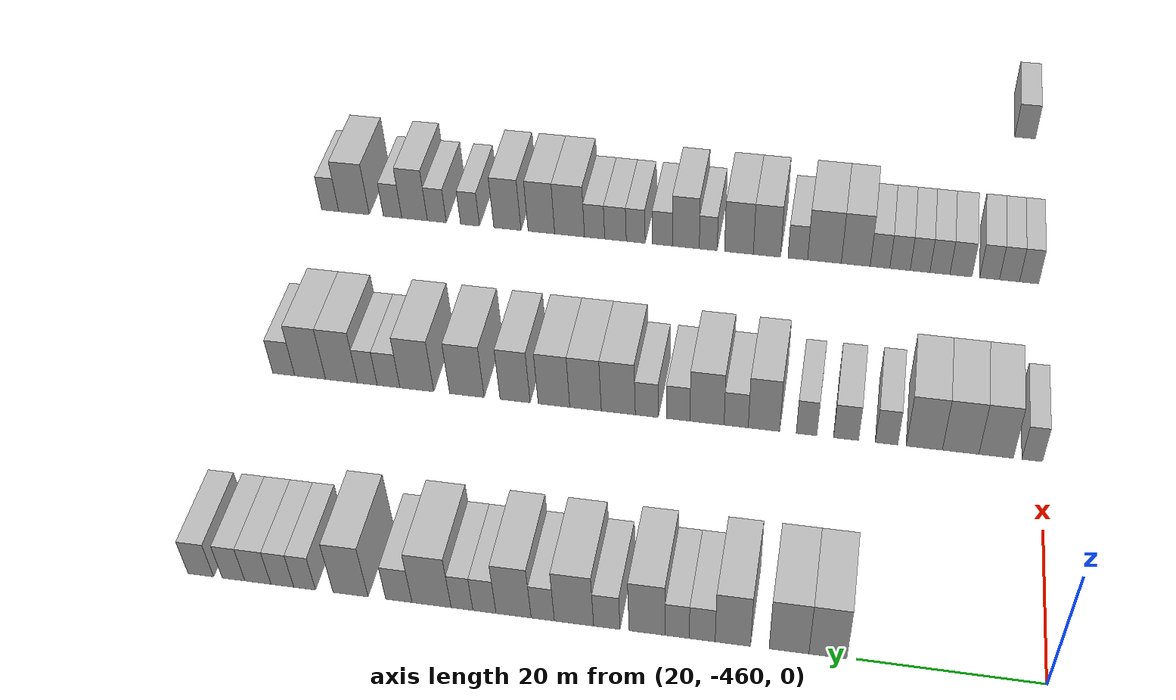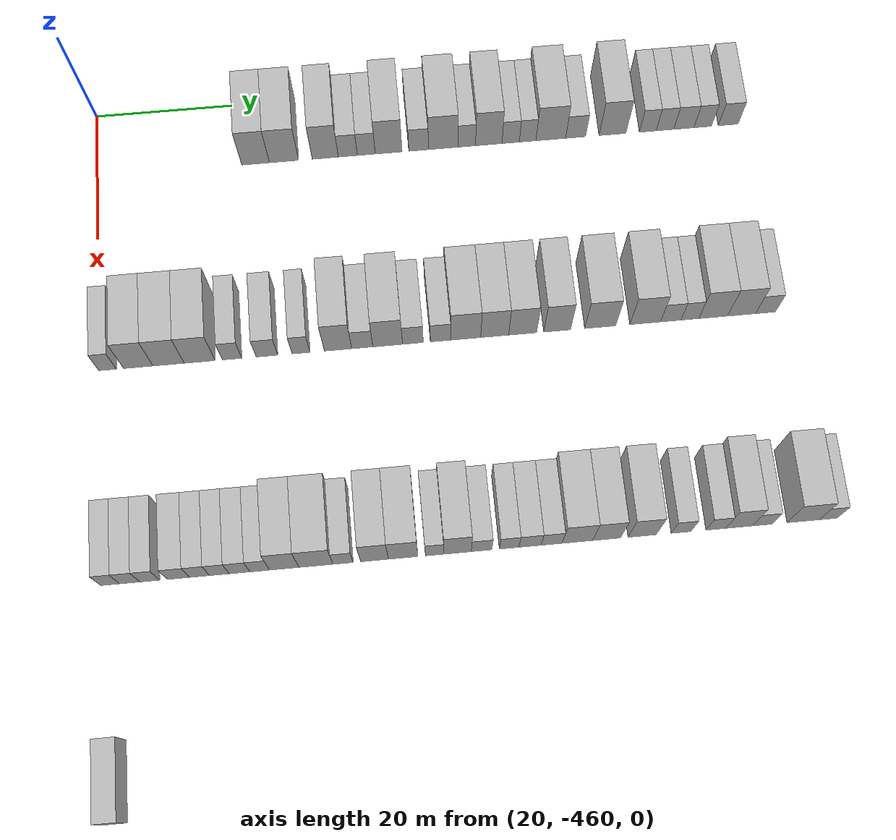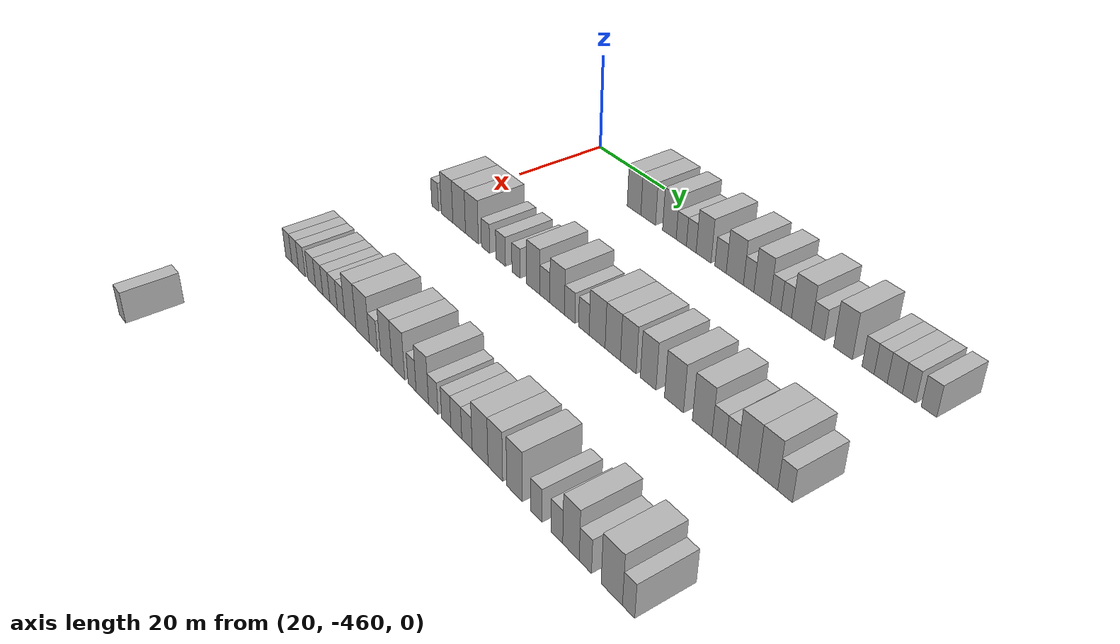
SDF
<sdf version="1.6">
 <world name="default">
  <model name="building_1">
   <static>1</static>
   <pose>25.0000 -436.9459 0 0.000000 0.000000 0.000000</pose>
   <link name="link">
    <pose>0 0 4.50 0 0 0</pose>
    <collision name="collision"><geometry><box><size>10.0000 4.0361 9.0000</size></box></geometry></collision>
    <visual name="visual">
     <cast_shadows>0</cast_shadows>
     <geometry><box><size>10.0000 4.0361 9.0000</size></box></geometry>
     <material>
      <script>
       <uri>model://HANNAS_wall/materials/scripts</uri>
       <uri>model://HANNAS_wall/materials/textures</uri>
       <name>vrc/HANNAS_wall</name>
      </script>
     </material>
    </visual>
   </link>
  </model>
  <model name="building_2">
   <static>1</static>
   <pose>25.0000 -432.8017 0 0.000000 0.000000 0.000000</pose>
   <link name="link">
    <pose>0 0 4.50 0 0 0</pose>
    <collision name="collision"><geometry><box><size>10.0000 4.2522 9.0000</size></box></geometry></collision>
    <visual name="visual">
     <cast_shadows>0</cast_shadows>
     <geometry><box><size>10.0000 4.2522 9.0000</size></box></geometry>
     <material>
      <script>
       <uri>model://HANNAS_wall/materials/scripts</uri>
       <uri>model://HANNAS_wall/materials/textures</uri>
       <name>vrc/HANNAS_wall</name>
      </script>
     </material>
    </visual>
   </link>
  </model>
  <model name="building_3">
   <static>1</static>
   <pose>25.0000 -426.7690 0 0.000000 0.000000 0.000000</pose>
   <link name="link">
    <pose>0 0 4.50 0 0 0</pose>
    <collision name="collision"><geometry><box><size>10.0000 3.8133 9.0000</size></box></geometry></collision>
    <visual name="visual">
     <cast_shadows>0</cast_shadows>
     <geometry><box><size>10.0000 3.8133 9.0000</size></box></geometry>
     <material>
      <script>
       <uri>model://HANNAS_wall/materials/scripts</uri>
       <uri>model://HANNAS_wall/materials/textures</uri>
       <name>vrc/HANNAS_wall</name>
      </script>
     </material>
    </visual>
   </link>
  </model>
  <model name="building_4">
   <static>1</static>
   <pose>25.0000 -423.4668 0 0.000000 0.000000 0.000000</pose>
   <link name="link">
    <pose>0 0 3.00 0 0 0</pose>
    <collision name="collision"><geometry><box><size>10.0000 2.7911 6.0000</size></box></geometry></collision>
    <visual name="visual">
     <cast_shadows>0</cast_shadows>
     <geometry><box><size>10.0000 2.7911 6.0000</size></box></geometry>
     <material>
      <script>
       <uri>model://HANNAS_wall/materials/scripts</uri>
       <uri>model://HANNAS_wall/materials/textures</uri>
       <name>vrc/HANNAS_wall</name>
      </script>
     </material>
    </visual>
   </link>
  </model>
  <model name="building_5">
   <static>1</static>
   <pose>25.0000 -420.7635 0 0.000000 0.000000 0.000000</pose>
   <link name="link">
    <pose>0 0 3.00 0 0 0</pose>
    <collision name="collision"><geometry><box><size>10.0000 2.6154 6.0000</size></box></geometry></collision>
    <visual name="visual">
     <cast_shadows>0</cast_shadows>
     <geometry><box><size>10.0000 2.6154 6.0000</size></box></geometry>
     <material>
      <script>
       <uri>model://HANNAS_wall/materials/scripts</uri>
       <uri>model://HANNAS_wall/materials/textures</uri>
       <name>vrc/HANNAS_wall</name>
      </script>
     </material>
    </visual>
   </link>
  </model>
  <model name="building_6">
   <static>1</static>
   <pose>25.0000 -417.4886 0 0.000000 0.000000 0.000000</pose>
   <link name="link">
    <pose>0 0 4.50 0 0 0</pose>
    <collision name="collision"><geometry><box><size>10.0000 3.9344 9.0000</size></box></geometry></collision>
    <visual name="visual">
     <cast_shadows>0</cast_shadows>
     <geometry><box><size>10.0000 3.9344 9.0000</size></box></geometry>
     <material>
      <script>
       <uri>model://HANNAS_wall/materials/scripts</uri>
       <uri>model://HANNAS_wall/materials/textures</uri>
       <name>vrc/HANNAS_wall</name>
      </script>
     </material>
    </visual>
   </link>
  </model>
  <model name="building_7">
   <static>1</static>
   <pose>25.0000 -413.0755 0 0.000000 0.000000 0.000000</pose>
   <link name="link">
    <pose>0 0 3.00 0 0 0</pose>
    <collision name="collision"><geometry><box><size>10.0000 2.8920 6.0000</size></box></geometry></collision>
    <visual name="visual">
     <cast_shadows>0</cast_shadows>
     <geometry><box><size>10.0000 2.8920 6.0000</size></box></geometry>
     <material>
      <script>
       <uri>model://HANNAS_wall/materials/scripts</uri>
       <uri>model://HANNAS_wall/materials/textures</uri>
       <name>vrc/HANNAS_wall</name>
      </script>
     </material>
    </visual>
   </link>
  </model>
  <model name="building_8">
   <static>1</static>
   <pose>25.0000 -409.4676 0 0.000000 0.000000 0.000000</pose>
   <link name="link">
    <pose>0 0 4.50 0 0 0</pose>
    <collision name="collision"><geometry><box><size>10.0000 4.3238 9.0000</size></box></geometry></collision>
    <visual name="visual">
     <cast_shadows>0</cast_shadows>
     <geometry><box><size>10.0000 4.3238 9.0000</size></box></geometry>
     <material>
      <script>
       <uri>model://HANNAS_wall/materials/scripts</uri>
       <uri>model://HANNAS_wall/materials/textures</uri>
       <name>vrc/HANNAS_wall</name>
      </script>
     </material>
    </visual>
   </link>
  </model>
  <model name="building_9">
   <static>1</static>
   <pose>25.0000 -406.0213 0 0.000000 0.000000 0.000000</pose>
   <link name="link">
    <pose>0 0 3.00 0 0 0</pose>
    <collision name="collision"><geometry><box><size>10.0000 2.5686 6.0000</size></box></geometry></collision>
    <visual name="visual">
     <cast_shadows>0</cast_shadows>
     <geometry><box><size>10.0000 2.5686 6.0000</size></box></geometry>
     <material>
      <script>
       <uri>model://HANNAS_wall/materials/scripts</uri>
       <uri>model://HANNAS_wall/materials/textures</uri>
       <name>vrc/HANNAS_wall</name>
      </script>
     </material>
    </visual>
   </link>
  </model>
  <model name="building_10">
   <static>1</static>
   <pose>25.0000 -402.7828 0 0.000000 0.000000 0.000000</pose>
   <link name="link">
    <pose>0 0 4.50 0 0 0</pose>
    <collision name="collision"><geometry><box><size>10.0000 3.9084 9.0000</size></box></geometry></collision>
    <visual name="visual">
     <cast_shadows>0</cast_shadows>
     <geometry><box><size>10.0000 3.9084 9.0000</size></box></geometry>
     <material>
      <script>
       <uri>model://HANNAS_wall/materials/scripts</uri>
       <uri>model://HANNAS_wall/materials/textures</uri>
       <name>vrc/HANNAS_wall</name>
      </script>
     </material>
    </visual>
   </link>
  </model>
  <model name="building_11">
   <static>1</static>
   <pose>25.0000 -399.5430 0 0.000000 0.000000 0.000000</pose>
   <link name="link">
    <pose>0 0 3.00 0 0 0</pose>
    <collision name="collision"><geometry><box><size>10.0000 2.5712 6.0000</size></box></geometry></collision>
    <visual name="visual">
     <cast_shadows>0</cast_shadows>
     <geometry><box><size>10.0000 2.5712 6.0000</size></box></geometry>
     <material>
      <script>
       <uri>model://HANNAS_wall/materials/scripts</uri>
       <uri>model://HANNAS_wall/materials/textures</uri>
       <name>vrc/HANNAS_wall</name>
      </script>
     </material>
    </visual>
   </link>
  </model>
  <model name="building_12">
   <static>1</static>
   <pose>25.0000 -397.0383 0 0.000000 0.000000 0.000000</pose>
   <link name="link">
    <pose>0 0 3.00 0 0 0</pose>
    <collision name="collision"><geometry><box><size>10.0000 2.4381 6.0000</size></box></geometry></collision>
    <visual name="visual">
     <cast_shadows>0</cast_shadows>
     <geometry><box><size>10.0000 2.4381 6.0000</size></box></geometry>
     <material>
      <script>
       <uri>model://HANNAS_wall/materials/scripts</uri>
       <uri>model://HANNAS_wall/materials/textures</uri>
       <name>vrc/HANNAS_wall</name>
      </script>
     </material>
    </visual>
   </link>
  </model>
  <model name="building_13">
   <static>1</static>
   <pose>25.0000 -393.6206 0 0.000000 0.000000 0.000000</pose>
   <link name="link">
    <pose>0 0 4.50 0 0 0</pose>
    <collision name="collision"><geometry><box><size>10.0000 4.3973 9.0000</size></box></geometry></collision>
    <visual name="visual">
     <cast_shadows>0</cast_shadows>
     <geometry><box><size>10.0000 4.3973 9.0000</size></box></geometry>
     <material>
      <script>
       <uri>model://HANNAS_wall/materials/scripts</uri>
       <uri>model://HANNAS_wall/materials/textures</uri>
       <name>vrc/HANNAS_wall</name>
      </script>
     </material>
    </visual>
   </link>
  </model>
  <model name="building_14">
   <static>1</static>
   <pose>25.0000 -389.9452 0 0.000000 0.000000 0.000000</pose>
   <link name="link">
    <pose>0 0 3.00 0 0 0</pose>
    <collision name="collision"><geometry><box><size>10.0000 2.9535 6.0000</size></box></geometry></collision>
    <visual name="visual">
     <cast_shadows>0</cast_shadows>
     <geometry><box><size>10.0000 2.9535 6.0000</size></box></geometry>
     <material>
      <script>
       <uri>model://HANNAS_wall/materials/scripts</uri>
       <uri>model://HANNAS_wall/materials/textures</uri>
       <name>vrc/HANNAS_wall</name>
      </script>
     </material>
    </visual>
   </link>
  </model>
  <model name="building_15">
   <static>1</static>
   <pose>25.0000 -384.4778 0 0.000000 0.000000 0.000000</pose>
   <link name="link">
    <pose>0 0 4.50 0 0 0</pose>
    <collision name="collision"><geometry><box><size>10.0000 3.9812 9.0000</size></box></geometry></collision>
    <visual name="visual">
     <cast_shadows>0</cast_shadows>
     <geometry><box><size>10.0000 3.9812 9.0000</size></box></geometry>
     <material>
      <script>
       <uri>model://HANNAS_wall/materials/scripts</uri>
       <uri>model://HANNAS_wall/materials/textures</uri>
       <name>vrc/HANNAS_wall</name>
      </script>
     </material>
    </visual>
   </link>
  </model>
  <model name="building_16">
   <static>1</static>
   <pose>25.0000 -379.2430 0 0.000000 0.000000 0.000000</pose>
   <link name="link">
    <pose>0 0 3.00 0 0 0</pose>
    <collision name="collision"><geometry><box><size>10.0000 2.4883 6.0000</size></box></geometry></collision>
    <visual name="visual">
     <cast_shadows>0</cast_shadows>
     <geometry><box><size>10.0000 2.4883 6.0000</size></box></geometry>
     <material>
      <script>
       <uri>model://HANNAS_wall/materials/scripts</uri>
       <uri>model://HANNAS_wall/materials/textures</uri>
       <name>vrc/HANNAS_wall</name>
      </script>
     </material>
    </visual>
   </link>
  </model>
  <model name="building_17">
   <static>1</static>
   <pose>25.0000 -376.6878 0 0.000000 0.000000 0.000000</pose>
   <link name="link">
    <pose>0 0 3.00 0 0 0</pose>
    <collision name="collision"><geometry><box><size>10.0000 2.6222 6.0000</size></box></geometry></collision>
    <visual name="visual">
     <cast_shadows>0</cast_shadows>
     <geometry><box><size>10.0000 2.6222 6.0000</size></box></geometry>
     <material>
      <script>
       <uri>model://HANNAS_wall/materials/scripts</uri>
       <uri>model://HANNAS_wall/materials/textures</uri>
       <name>vrc/HANNAS_wall</name>
      </script>
     </material>
    </visual>
   </link>
  </model>
  <model name="building_18">
   <static>1</static>
   <pose>25.0000 -373.8791 0 0.000000 0.000000 0.000000</pose>
   <link name="link">
    <pose>0 0 3.00 0 0 0</pose>
    <collision name="collision"><geometry><box><size>10.0000 2.9952 6.0000</size></box></geometry></collision>
    <visual name="visual">
     <cast_shadows>0</cast_shadows>
     <geometry><box><size>10.0000 2.9952 6.0000</size></box></geometry>
     <material>
      <script>
       <uri>model://HANNAS_wall/materials/scripts</uri>
       <uri>model://HANNAS_wall/materials/textures</uri>
       <name>vrc/HANNAS_wall</name>
      </script>
     </material>
    </visual>
   </link>
  </model>
  <model name="building_19">
   <static>1</static>
   <pose>25.0000 -371.0766 0 0.000000 0.000000 0.000000</pose>
   <link name="link">
    <pose>0 0 3.00 0 0 0</pose>
    <collision name="collision"><geometry><box><size>10.0000 2.6098 6.0000</size></box></geometry></collision>
    <visual name="visual">
     <cast_shadows>0</cast_shadows>
     <geometry><box><size>10.0000 2.6098 6.0000</size></box></geometry>
     <material>
      <script>
       <uri>model://HANNAS_wall/materials/scripts</uri>
       <uri>model://HANNAS_wall/materials/textures</uri>
       <name>vrc/HANNAS_wall</name>
      </script>
     </material>
    </visual>
   </link>
  </model>
  <model name="building_20">
   <static>1</static>
   <pose>25.0000 -367.2946 0 0.000000 0.000000 0.000000</pose>
   <link name="link">
    <pose>0 0 3.00 0 0 0</pose>
    <collision name="collision"><geometry><box><size>10.0000 2.9542 6.0000</size></box></geometry></collision>
    <visual name="visual">
     <cast_shadows>0</cast_shadows>
     <geometry><box><size>10.0000 2.9542 6.0000</size></box></geometry>
     <material>
      <script>
       <uri>model://HANNAS_wall/materials/scripts</uri>
       <uri>model://HANNAS_wall/materials/textures</uri>
       <name>vrc/HANNAS_wall</name>
      </script>
     </material>
    </visual>
   </link>
  </model>
  <model name="building_235">
   <static>1</static>
   <pose>55.0000 -458.7933 0 0.000000 0.000000 0.000000</pose>
   <link name="link">
    <pose>0 0 3.00 0 0 0</pose>
    <collision name="collision"><geometry><box><size>10.0000 2.4135 6.0000</size></box></geometry></collision>
    <visual name="visual">
     <cast_shadows>0</cast_shadows>
     <geometry><box><size>10.0000 2.4135 6.0000</size></box></geometry>
     <material>
      <script>
       <uri>model://HANNAS_wall/materials/scripts</uri>
       <uri>model://HANNAS_wall/materials/textures</uri>
       <name>vrc/HANNAS_wall</name>
      </script>
     </material>
    </visual>
   </link>
  </model>
  <model name="building_236">
   <static>1</static>
   <pose>55.0000 -454.5644 0 0.000000 0.000000 0.000000</pose>
   <link name="link">
    <pose>0 0 4.50 0 0 0</pose>
    <collision name="collision"><geometry><box><size>10.0000 4.0442 9.0000</size></box></geometry></collision>
    <visual name="visual">
     <cast_shadows>0</cast_shadows>
     <geometry><box><size>10.0000 4.0442 9.0000</size></box></geometry>
     <material>
      <script>
       <uri>model://HANNAS_wall/materials/scripts</uri>
       <uri>model://HANNAS_wall/materials/textures</uri>
       <name>vrc/HANNAS_wall</name>
      </script>
     </material>
    </visual>
   </link>
  </model>
  <model name="building_237">
   <static>1</static>
   <pose>55.0000 -450.3883 0 0.000000 0.000000 0.000000</pose>
   <link name="link">
    <pose>0 0 4.50 0 0 0</pose>
    <collision name="collision"><geometry><box><size>10.0000 4.3082 9.0000</size></box></geometry></collision>
    <visual name="visual">
     <cast_shadows>0</cast_shadows>
     <geometry><box><size>10.0000 4.3082 9.0000</size></box></geometry>
     <material>
      <script>
       <uri>model://HANNAS_wall/materials/scripts</uri>
       <uri>model://HANNAS_wall/materials/textures</uri>
       <name>vrc/HANNAS_wall</name>
      </script>
     </material>
    </visual>
   </link>
  </model>
  <model name="building_238">
   <static>1</static>
   <pose>55.0000 -446.0899 0 0.000000 0.000000 0.000000</pose>
   <link name="link">
    <pose>0 0 4.50 0 0 0</pose>
    <collision name="collision"><geometry><box><size>10.0000 4.2886 9.0000</size></box></geometry></collision>
    <visual name="visual">
     <cast_shadows>0</cast_shadows>
     <geometry><box><size>10.0000 4.2886 9.0000</size></box></geometry>
     <material>
      <script>
       <uri>model://HANNAS_wall/materials/scripts</uri>
       <uri>model://HANNAS_wall/materials/textures</uri>
       <name>vrc/HANNAS_wall</name>
      </script>
     </material>
    </visual>
   </link>
  </model>
  <model name="building_239">
   <static>1</static>
   <pose>55.0000 -441.6049 0 0.000000 0.000000 0.000000</pose>
   <link name="link">
    <pose>0 0 3.00 0 0 0</pose>
    <collision name="collision"><geometry><box><size>10.0000 2.6813 6.0000</size></box></geometry></collision>
    <visual name="visual">
     <cast_shadows>0</cast_shadows>
     <geometry><box><size>10.0000 2.6813 6.0000</size></box></geometry>
     <material>
      <script>
       <uri>model://HANNAS_wall/materials/scripts</uri>
       <uri>model://HANNAS_wall/materials/textures</uri>
       <name>vrc/HANNAS_wall</name>
      </script>
     </material>
    </visual>
   </link>
  </model>
  <model name="building_240">
   <static>1</static>
   <pose>55.0000 -436.7684 0 0.000000 0.000000 0.000000</pose>
   <link name="link">
    <pose>0 0 3.00 0 0 0</pose>
    <collision name="collision"><geometry><box><size>10.0000 2.9917 6.0000</size></box></geometry></collision>
    <visual name="visual">
     <cast_shadows>0</cast_shadows>
     <geometry><box><size>10.0000 2.9917 6.0000</size></box></geometry>
     <material>
      <script>
       <uri>model://HANNAS_wall/materials/scripts</uri>
       <uri>model://HANNAS_wall/materials/textures</uri>
       <name>vrc/HANNAS_wall</name>
      </script>
     </material>
    </visual>
   </link>
  </model>
  <model name="building_241">
   <static>1</static>
   <pose>55.0000 -432.0332 0 0.000000 0.000000 0.000000</pose>
   <link name="link">
    <pose>0 0 3.00 0 0 0</pose>
    <collision name="collision"><geometry><box><size>10.0000 2.4788 6.0000</size></box></geometry></collision>
    <visual name="visual">
     <cast_shadows>0</cast_shadows>
     <geometry><box><size>10.0000 2.4788 6.0000</size></box></geometry>
     <material>
      <script>
       <uri>model://HANNAS_wall/materials/scripts</uri>
       <uri>model://HANNAS_wall/materials/textures</uri>
       <name>vrc/HANNAS_wall</name>
      </script>
     </material>
    </visual>
   </link>
  </model>
  <model name="building_242">
   <static>1</static>
   <pose>55.0000 -426.8899 0 0.000000 0.000000 0.000000</pose>
   <link name="link">
    <pose>0 0 4.50 0 0 0</pose>
    <collision name="collision"><geometry><box><size>10.0000 3.8078 9.0000</size></box></geometry></collision>
    <visual name="visual">
     <cast_shadows>0</cast_shadows>
     <geometry><box><size>10.0000 3.8078 9.0000</size></box></geometry>
     <material>
      <script>
       <uri>model://HANNAS_wall/materials/scripts</uri>
       <uri>model://HANNAS_wall/materials/textures</uri>
       <name>vrc/HANNAS_wall</name>
      </script>
     </material>
    </visual>
   </link>
  </model>
  <model name="building_243">
   <static>1</static>
   <pose>55.0000 -423.5164 0 0.000000 0.000000 0.000000</pose>
   <link name="link">
    <pose>0 0 3.00 0 0 0</pose>
    <collision name="collision"><geometry><box><size>10.0000 2.9392 6.0000</size></box></geometry></collision>
    <visual name="visual">
     <cast_shadows>0</cast_shadows>
     <geometry><box><size>10.0000 2.9392 6.0000</size></box></geometry>
     <material>
      <script>
       <uri>model://HANNAS_wall/materials/scripts</uri>
       <uri>model://HANNAS_wall/materials/textures</uri>
       <name>vrc/HANNAS_wall</name>
      </script>
     </material>
    </visual>
   </link>
  </model>
  <model name="building_244">
   <static>1</static>
   <pose>55.0000 -419.9731 0 0.000000 0.000000 0.000000</pose>
   <link name="link">
    <pose>0 0 4.50 0 0 0</pose>
    <collision name="collision"><geometry><box><size>10.0000 4.1474 9.0000</size></box></geometry></collision>
    <visual name="visual">
     <cast_shadows>0</cast_shadows>
     <geometry><box><size>10.0000 4.1474 9.0000</size></box></geometry>
     <material>
      <script>
       <uri>model://HANNAS_wall/materials/scripts</uri>
       <uri>model://HANNAS_wall/materials/textures</uri>
       <name>vrc/HANNAS_wall</name>
      </script>
     </material>
    </visual>
   </link>
  </model>
  <model name="building_245">
   <static>1</static>
   <pose>55.0000 -416.4583 0 0.000000 0.000000 0.000000</pose>
   <link name="link">
    <pose>0 0 3.00 0 0 0</pose>
    <collision name="collision"><geometry><box><size>10.0000 2.8822 6.0000</size></box></geometry></collision>
    <visual name="visual">
     <cast_shadows>0</cast_shadows>
     <geometry><box><size>10.0000 2.8822 6.0000</size></box></geometry>
     <material>
      <script>
       <uri>model://HANNAS_wall/materials/scripts</uri>
       <uri>model://HANNAS_wall/materials/textures</uri>
       <name>vrc/HANNAS_wall</name>
      </script>
     </material>
    </visual>
   </link>
  </model>
  <model name="building_246">
   <static>1</static>
   <pose>55.0000 -412.6015 0 0.000000 0.000000 0.000000</pose>
   <link name="link">
    <pose>0 0 3.00 0 0 0</pose>
    <collision name="collision"><geometry><box><size>10.0000 2.8315 6.0000</size></box></geometry></collision>
    <visual name="visual">
     <cast_shadows>0</cast_shadows>
     <geometry><box><size>10.0000 2.8315 6.0000</size></box></geometry>
     <material>
      <script>
       <uri>model://HANNAS_wall/materials/scripts</uri>
       <uri>model://HANNAS_wall/materials/textures</uri>
       <name>vrc/HANNAS_wall</name>
      </script>
     </material>
    </visual>
   </link>
  </model>
  <model name="building_247">
   <static>1</static>
   <pose>55.0000 -409.0856 0 0.000000 0.000000 0.000000</pose>
   <link name="link">
    <pose>0 0 4.50 0 0 0</pose>
    <collision name="collision"><geometry><box><size>10.0000 4.2003 9.0000</size></box></geometry></collision>
    <visual name="visual">
     <cast_shadows>0</cast_shadows>
     <geometry><box><size>10.0000 4.2003 9.0000</size></box></geometry>
     <material>
      <script>
       <uri>model://HANNAS_wall/materials/scripts</uri>
       <uri>model://HANNAS_wall/materials/textures</uri>
       <name>vrc/HANNAS_wall</name>
      </script>
     </material>
    </visual>
   </link>
  </model>
  <model name="building_248">
   <static>1</static>
   <pose>55.0000 -405.0296 0 0.000000 0.000000 0.000000</pose>
   <link name="link">
    <pose>0 0 4.50 0 0 0</pose>
    <collision name="collision"><geometry><box><size>10.0000 3.9116 9.0000</size></box></geometry></collision>
    <visual name="visual">
     <cast_shadows>0</cast_shadows>
     <geometry><box><size>10.0000 3.9116 9.0000</size></box></geometry>
     <material>
      <script>
       <uri>model://HANNAS_wall/materials/scripts</uri>
       <uri>model://HANNAS_wall/materials/textures</uri>
       <name>vrc/HANNAS_wall</name>
      </script>
     </material>
    </visual>
   </link>
  </model>
  <model name="building_249">
   <static>1</static>
   <pose>55.0000 -401.1084 0 0.000000 0.000000 0.000000</pose>
   <link name="link">
    <pose>0 0 4.50 0 0 0</pose>
    <collision name="collision"><geometry><box><size>10.0000 3.9308 9.0000</size></box></geometry></collision>
    <visual name="visual">
     <cast_shadows>0</cast_shadows>
     <geometry><box><size>10.0000 3.9308 9.0000</size></box></geometry>
     <material>
      <script>
       <uri>model://HANNAS_wall/materials/scripts</uri>
       <uri>model://HANNAS_wall/materials/textures</uri>
       <name>vrc/HANNAS_wall</name>
      </script>
     </material>
    </visual>
   </link>
  </model>
  <model name="building_250">
   <static>1</static>
   <pose>55.0000 -396.2635 0 0.000000 0.000000 0.000000</pose>
   <link name="link">
    <pose>0 0 4.50 0 0 0</pose>
    <collision name="collision"><geometry><box><size>10.0000 3.7590 9.0000</size></box></geometry></collision>
    <visual name="visual">
     <cast_shadows>0</cast_shadows>
     <geometry><box><size>10.0000 3.7590 9.0000</size></box></geometry>
     <material>
      <script>
       <uri>model://HANNAS_wall/materials/scripts</uri>
       <uri>model://HANNAS_wall/materials/textures</uri>
       <name>vrc/HANNAS_wall</name>
      </script>
     </material>
    </visual>
   </link>
  </model>
  <model name="building_251">
   <static>1</static>
   <pose>55.0000 -390.2033 0 0.000000 0.000000 0.000000</pose>
   <link name="link">
    <pose>0 0 4.50 0 0 0</pose>
    <collision name="collision"><geometry><box><size>10.0000 4.3614 9.0000</size></box></geometry></collision>
    <visual name="visual">
     <cast_shadows>0</cast_shadows>
     <geometry><box><size>10.0000 4.3614 9.0000</size></box></geometry>
     <material>
      <script>
       <uri>model://HANNAS_wall/materials/scripts</uri>
       <uri>model://HANNAS_wall/materials/textures</uri>
       <name>vrc/HANNAS_wall</name>
      </script>
     </material>
    </visual>
   </link>
  </model>
  <model name="building_252">
   <static>1</static>
   <pose>55.0000 -383.8712 0 0.000000 0.000000 0.000000</pose>
   <link name="link">
    <pose>0 0 4.50 0 0 0</pose>
    <collision name="collision"><geometry><box><size>10.0000 4.3028 9.0000</size></box></geometry></collision>
    <visual name="visual">
     <cast_shadows>0</cast_shadows>
     <geometry><box><size>10.0000 4.3028 9.0000</size></box></geometry>
     <material>
      <script>
       <uri>model://HANNAS_wall/materials/scripts</uri>
       <uri>model://HANNAS_wall/materials/textures</uri>
       <name>vrc/HANNAS_wall</name>
      </script>
     </material>
    </visual>
   </link>
  </model>
  <model name="building_253">
   <static>1</static>
   <pose>55.0000 -380.2722 0 0.000000 0.000000 0.000000</pose>
   <link name="link">
    <pose>0 0 3.00 0 0 0</pose>
    <collision name="collision"><geometry><box><size>10.0000 2.8951 6.0000</size></box></geometry></collision>
    <visual name="visual">
     <cast_shadows>0</cast_shadows>
     <geometry><box><size>10.0000 2.8951 6.0000</size></box></geometry>
     <material>
      <script>
       <uri>model://HANNAS_wall/materials/scripts</uri>
       <uri>model://HANNAS_wall/materials/textures</uri>
       <name>vrc/HANNAS_wall</name>
      </script>
     </material>
    </visual>
   </link>
  </model>
  <model name="building_254">
   <static>1</static>
   <pose>55.0000 -377.5730 0 0.000000 0.000000 0.000000</pose>
   <link name="link">
    <pose>0 0 3.00 0 0 0</pose>
    <collision name="collision"><geometry><box><size>10.0000 2.5033 6.0000</size></box></geometry></collision>
    <visual name="visual">
     <cast_shadows>0</cast_shadows>
     <geometry><box><size>10.0000 2.5033 6.0000</size></box></geometry>
     <material>
      <script>
       <uri>model://HANNAS_wall/materials/scripts</uri>
       <uri>model://HANNAS_wall/materials/textures</uri>
       <name>vrc/HANNAS_wall</name>
      </script>
     </material>
    </visual>
   </link>
  </model>
  <model name="building_255">
   <static>1</static>
   <pose>55.0000 -374.2733 0 0.000000 0.000000 0.000000</pose>
   <link name="link">
    <pose>0 0 4.50 0 0 0</pose>
    <collision name="collision"><geometry><box><size>10.0000 4.0962 9.0000</size></box></geometry></collision>
    <visual name="visual">
     <cast_shadows>0</cast_shadows>
     <geometry><box><size>10.0000 4.0962 9.0000</size></box></geometry>
     <material>
      <script>
       <uri>model://HANNAS_wall/materials/scripts</uri>
       <uri>model://HANNAS_wall/materials/textures</uri>
       <name>vrc/HANNAS_wall</name>
      </script>
     </material>
    </visual>
   </link>
  </model>
  <model name="building_256">
   <static>1</static>
   <pose>55.0000 -370.2383 0 0.000000 0.000000 0.000000</pose>
   <link name="link">
    <pose>0 0 4.50 0 0 0</pose>
    <collision name="collision"><geometry><box><size>10.0000 3.9738 9.0000</size></box></geometry></collision>
    <visual name="visual">
     <cast_shadows>0</cast_shadows>
     <geometry><box><size>10.0000 3.9738 9.0000</size></box></geometry>
     <material>
      <script>
       <uri>model://HANNAS_wall/materials/scripts</uri>
       <uri>model://HANNAS_wall/materials/textures</uri>
       <name>vrc/HANNAS_wall</name>
      </script>
     </material>
    </visual>
   </link>
  </model>
  <model name="building_257">
   <static>1</static>
   <pose>55.0000 -366.8373 0 0.000000 0.000000 0.000000</pose>
   <link name="link">
    <pose>0 0 3.00 0 0 0</pose>
    <collision name="collision"><geometry><box><size>10.0000 2.8281 6.0000</size></box></geometry></collision>
    <visual name="visual">
     <cast_shadows>0</cast_shadows>
     <geometry><box><size>10.0000 2.8281 6.0000</size></box></geometry>
     <material>
      <script>
       <uri>model://HANNAS_wall/materials/scripts</uri>
       <uri>model://HANNAS_wall/materials/textures</uri>
       <name>vrc/HANNAS_wall</name>
      </script>
     </material>
    </visual>
   </link>
  </model>
  <model name="building_473">
   <static>1</static>
   <pose>85.0000 -458.7610 0 0.000000 0.000000 0.000000</pose>
   <link name="link">
    <pose>0 0 3.00 0 0 0</pose>
    <collision name="collision"><geometry><box><size>10.0000 2.4780 6.0000</size></box></geometry></collision>
    <visual name="visual">
     <cast_shadows>0</cast_shadows>
     <geometry><box><size>10.0000 2.4780 6.0000</size></box></geometry>
     <material>
      <script>
       <uri>model://HANNAS_wall/materials/scripts</uri>
       <uri>model://HANNAS_wall/materials/textures</uri>
       <name>vrc/HANNAS_wall</name>
      </script>
     </material>
    </visual>
   </link>
  </model>
  <model name="building_474">
   <static>1</static>
   <pose>85.0000 -456.2141 0 0.000000 0.000000 0.000000</pose>
   <link name="link">
    <pose>0 0 3.00 0 0 0</pose>
    <collision name="collision"><geometry><box><size>10.0000 2.6157 6.0000</size></box></geometry></collision>
    <visual name="visual">
     <cast_shadows>0</cast_shadows>
     <geometry><box><size>10.0000 2.6157 6.0000</size></box></geometry>
     <material>
      <script>
       <uri>model://HANNAS_wall/materials/scripts</uri>
       <uri>model://HANNAS_wall/materials/textures</uri>
       <name>vrc/HANNAS_wall</name>
      </script>
     </material>
    </visual>
   </link>
  </model>
  <model name="building_475">
   <static>1</static>
   <pose>85.0000 -453.6101 0 0.000000 0.000000 0.000000</pose>
   <link name="link">
    <pose>0 0 3.00 0 0 0</pose>
    <collision name="collision"><geometry><box><size>10.0000 2.5925 6.0000</size></box></geometry></collision>
    <visual name="visual">
     <cast_shadows>0</cast_shadows>
     <geometry><box><size>10.0000 2.5925 6.0000</size></box></geometry>
     <material>
      <script>
       <uri>model://HANNAS_wall/materials/scripts</uri>
       <uri>model://HANNAS_wall/materials/textures</uri>
       <name>vrc/HANNAS_wall</name>
      </script>
     </material>
    </visual>
   </link>
  </model>
  <model name="building_476">
   <static>1</static>
   <pose>85.0000 -449.8600 0 0.000000 0.000000 0.000000</pose>
   <link name="link">
    <pose>0 0 3.00 0 0 0</pose>
    <collision name="collision"><geometry><box><size>10.0000 2.9076 6.0000</size></box></geometry></collision>
    <visual name="visual">
     <cast_shadows>0</cast_shadows>
     <geometry><box><size>10.0000 2.9076 6.0000</size></box></geometry>
     <material>
      <script>
       <uri>model://HANNAS_wall/materials/scripts</uri>
       <uri>model://HANNAS_wall/materials/textures</uri>
       <name>vrc/HANNAS_wall</name>
      </script>
     </material>
    </visual>
   </link>
  </model>
  <model name="building_477">
   <static>1</static>
   <pose>85.0000 -447.0871 0 0.000000 0.000000 0.000000</pose>
   <link name="link">
    <pose>0 0 3.00 0 0 0</pose>
    <collision name="collision"><geometry><box><size>10.0000 2.6383 6.0000</size></box></geometry></collision>
    <visual name="visual">
     <cast_shadows>0</cast_shadows>
     <geometry><box><size>10.0000 2.6383 6.0000</size></box></geometry>
     <material>
      <script>
       <uri>model://HANNAS_wall/materials/scripts</uri>
       <uri>model://HANNAS_wall/materials/textures</uri>
       <name>vrc/HANNAS_wall</name>
      </script>
     </material>
    </visual>
   </link>
  </model>
  <model name="building_478">
   <static>1</static>
   <pose>85.0000 -444.4702 0 0.000000 0.000000 0.000000</pose>
   <link name="link">
    <pose>0 0 3.00 0 0 0</pose>
    <collision name="collision"><geometry><box><size>10.0000 2.5955 6.0000</size></box></geometry></collision>
    <visual name="visual">
     <cast_shadows>0</cast_shadows>
     <geometry><box><size>10.0000 2.5955 6.0000</size></box></geometry>
     <material>
      <script>
       <uri>model://HANNAS_wall/materials/scripts</uri>
       <uri>model://HANNAS_wall/materials/textures</uri>
       <name>vrc/HANNAS_wall</name>
      </script>
     </material>
    </visual>
   </link>
  </model>
  <model name="building_479">
   <static>1</static>
   <pose>85.0000 -441.8196 0 0.000000 0.000000 0.000000</pose>
   <link name="link">
    <pose>0 0 3.00 0 0 0</pose>
    <collision name="collision"><geometry><box><size>10.0000 2.7057 6.0000</size></box></geometry></collision>
    <visual name="visual">
     <cast_shadows>0</cast_shadows>
     <geometry><box><size>10.0000 2.7057 6.0000</size></box></geometry>
     <material>
      <script>
       <uri>model://HANNAS_wall/materials/scripts</uri>
       <uri>model://HANNAS_wall/materials/textures</uri>
       <name>vrc/HANNAS_wall</name>
      </script>
     </material>
    </visual>
   </link>
  </model>
  <model name="building_480">
   <static>1</static>
   <pose>85.0000 -439.1704 0 0.000000 0.000000 0.000000</pose>
   <link name="link">
    <pose>0 0 3.00 0 0 0</pose>
    <collision name="collision"><geometry><box><size>10.0000 2.5926 6.0000</size></box></geometry></collision>
    <visual name="visual">
     <cast_shadows>0</cast_shadows>
     <geometry><box><size>10.0000 2.5926 6.0000</size></box></geometry>
     <material>
      <script>
       <uri>model://HANNAS_wall/materials/scripts</uri>
       <uri>model://HANNAS_wall/materials/textures</uri>
       <name>vrc/HANNAS_wall</name>
      </script>
     </material>
    </visual>
   </link>
  </model>
  <model name="building_481">
   <static>1</static>
   <pose>85.0000 -435.9466 0 0.000000 0.000000 0.000000</pose>
   <link name="link">
    <pose>0 0 4.50 0 0 0</pose>
    <collision name="collision"><geometry><box><size>10.0000 3.8551 9.0000</size></box></geometry></collision>
    <visual name="visual">
     <cast_shadows>0</cast_shadows>
     <geometry><box><size>10.0000 3.8551 9.0000</size></box></geometry>
     <material>
      <script>
       <uri>model://HANNAS_wall/materials/scripts</uri>
       <uri>model://HANNAS_wall/materials/textures</uri>
       <name>vrc/HANNAS_wall</name>
      </script>
     </material>
    </visual>
   </link>
  </model>
  <model name="building_482">
   <static>1</static>
   <pose>85.0000 -431.7697 0 0.000000 0.000000 0.000000</pose>
   <link name="link">
    <pose>0 0 4.50 0 0 0</pose>
    <collision name="collision"><geometry><box><size>10.0000 4.4985 9.0000</size></box></geometry></collision>
    <visual name="visual">
     <cast_shadows>0</cast_shadows>
     <geometry><box><size>10.0000 4.4985 9.0000</size></box></geometry>
     <material>
      <script>
       <uri>model://HANNAS_wall/materials/scripts</uri>
       <uri>model://HANNAS_wall/materials/textures</uri>
       <name>vrc/HANNAS_wall</name>
      </script>
     </material>
    </visual>
   </link>
  </model>
  <model name="building_483">
   <static>1</static>
   <pose>85.0000 -428.2055 0 0.000000 0.000000 0.000000</pose>
   <link name="link">
    <pose>0 0 3.00 0 0 0</pose>
    <collision name="collision"><geometry><box><size>10.0000 2.6301 6.0000</size></box></geometry></collision>
    <visual name="visual">
     <cast_shadows>0</cast_shadows>
     <geometry><box><size>10.0000 2.6301 6.0000</size></box></geometry>
     <material>
      <script>
       <uri>model://HANNAS_wall/materials/scripts</uri>
       <uri>model://HANNAS_wall/materials/textures</uri>
       <name>vrc/HANNAS_wall</name>
      </script>
     </material>
    </visual>
   </link>
  </model>
  <model name="building_484">
   <static>1</static>
   <pose>85.0000 -424.0570 0 0.000000 0.000000 0.000000</pose>
   <link name="link">
    <pose>0 0 4.50 0 0 0</pose>
    <collision name="collision"><geometry><box><size>10.0000 3.6668 9.0000</size></box></geometry></collision>
    <visual name="visual">
     <cast_shadows>0</cast_shadows>
     <geometry><box><size>10.0000 3.6668 9.0000</size></box></geometry>
     <material>
      <script>
       <uri>model://HANNAS_wall/materials/scripts</uri>
       <uri>model://HANNAS_wall/materials/textures</uri>
       <name>vrc/HANNAS_wall</name>
      </script>
     </material>
    </visual>
   </link>
  </model>
  <model name="building_485">
   <static>1</static>
   <pose>85.0000 -420.2785 0 0.000000 0.000000 0.000000</pose>
   <link name="link">
    <pose>0 0 4.50 0 0 0</pose>
    <collision name="collision"><geometry><box><size>10.0000 3.8904 9.0000</size></box></geometry></collision>
    <visual name="visual">
     <cast_shadows>0</cast_shadows>
     <geometry><box><size>10.0000 3.8904 9.0000</size></box></geometry>
     <material>
      <script>
       <uri>model://HANNAS_wall/materials/scripts</uri>
       <uri>model://HANNAS_wall/materials/textures</uri>
       <name>vrc/HANNAS_wall</name>
      </script>
     </material>
    </visual>
   </link>
  </model>
  <model name="building_486">
   <static>1</static>
   <pose>85.0000 -416.1214 0 0.000000 0.000000 0.000000</pose>
   <link name="link">
    <pose>0 0 3.00 0 0 0</pose>
    <collision name="collision"><geometry><box><size>10.0000 2.4236 6.0000</size></box></geometry></collision>
    <visual name="visual">
     <cast_shadows>0</cast_shadows>
     <geometry><box><size>10.0000 2.4236 6.0000</size></box></geometry>
     <material>
      <script>
       <uri>model://HANNAS_wall/materials/scripts</uri>
       <uri>model://HANNAS_wall/materials/textures</uri>
       <name>vrc/HANNAS_wall</name>
      </script>
     </material>
    </visual>
   </link>
  </model>
  <model name="building_487">
   <static>1</static>
   <pose>85.0000 -413.0812 0 0.000000 0.000000 0.000000</pose>
   <link name="link">
    <pose>0 0 4.50 0 0 0</pose>
    <collision name="collision"><geometry><box><size>10.0000 3.6568 9.0000</size></box></geometry></collision>
    <visual name="visual">
     <cast_shadows>0</cast_shadows>
     <geometry><box><size>10.0000 3.6568 9.0000</size></box></geometry>
     <material>
      <script>
       <uri>model://HANNAS_wall/materials/scripts</uri>
       <uri>model://HANNAS_wall/materials/textures</uri>
       <name>vrc/HANNAS_wall</name>
      </script>
     </material>
    </visual>
   </link>
  </model>
  <model name="building_488">
   <static>1</static>
   <pose>85.0000 -409.8910 0 0.000000 0.000000 0.000000</pose>
   <link name="link">
    <pose>0 0 3.00 0 0 0</pose>
    <collision name="collision"><geometry><box><size>10.0000 2.7236 6.0000</size></box></geometry></collision>
    <visual name="visual">
     <cast_shadows>0</cast_shadows>
     <geometry><box><size>10.0000 2.7236 6.0000</size></box></geometry>
     <material>
      <script>
       <uri>model://HANNAS_wall/materials/scripts</uri>
       <uri>model://HANNAS_wall/materials/textures</uri>
       <name>vrc/HANNAS_wall</name>
      </script>
     </material>
    </visual>
   </link>
  </model>
  <model name="building_489">
   <static>1</static>
   <pose>85.0000 -406.2355 0 0.000000 0.000000 0.000000</pose>
   <link name="link">
    <pose>0 0 3.00 0 0 0</pose>
    <collision name="collision"><geometry><box><size>10.0000 2.5873 6.0000</size></box></geometry></collision>
    <visual name="visual">
     <cast_shadows>0</cast_shadows>
     <geometry><box><size>10.0000 2.5873 6.0000</size></box></geometry>
     <material>
      <script>
       <uri>model://HANNAS_wall/materials/scripts</uri>
       <uri>model://HANNAS_wall/materials/textures</uri>
       <name>vrc/HANNAS_wall</name>
      </script>
     </material>
    </visual>
   </link>
  </model>
  <model name="building_490">
   <static>1</static>
   <pose>85.0000 -403.4622 0 0.000000 0.000000 0.000000</pose>
   <link name="link">
    <pose>0 0 3.00 0 0 0</pose>
    <collision name="collision"><geometry><box><size>10.0000 2.9593 6.0000</size></box></geometry></collision>
    <visual name="visual">
     <cast_shadows>0</cast_shadows>
     <geometry><box><size>10.0000 2.9593 6.0000</size></box></geometry>
     <material>
      <script>
       <uri>model://HANNAS_wall/materials/scripts</uri>
       <uri>model://HANNAS_wall/materials/textures</uri>
       <name>vrc/HANNAS_wall</name>
      </script>
     </material>
    </visual>
   </link>
  </model>
  <model name="building_491">
   <static>1</static>
   <pose>85.0000 -400.5897 0 0.000000 0.000000 0.000000</pose>
   <link name="link">
    <pose>0 0 3.00 0 0 0</pose>
    <collision name="collision"><geometry><box><size>10.0000 2.7859 6.0000</size></box></geometry></collision>
    <visual name="visual">
     <cast_shadows>0</cast_shadows>
     <geometry><box><size>10.0000 2.7859 6.0000</size></box></geometry>
     <material>
      <script>
       <uri>model://HANNAS_wall/materials/scripts</uri>
       <uri>model://HANNAS_wall/materials/textures</uri>
       <name>vrc/HANNAS_wall</name>
      </script>
     </material>
    </visual>
   </link>
  </model>
  <model name="building_492">
   <static>1</static>
   <pose>85.0000 -397.1348 0 0.000000 0.000000 0.000000</pose>
   <link name="link">
    <pose>0 0 4.50 0 0 0</pose>
    <collision name="collision"><geometry><box><size>10.0000 4.1238 9.0000</size></box></geometry></collision>
    <visual name="visual">
     <cast_shadows>0</cast_shadows>
     <geometry><box><size>10.0000 4.1238 9.0000</size></box></geometry>
     <material>
      <script>
       <uri>model://HANNAS_wall/materials/scripts</uri>
       <uri>model://HANNAS_wall/materials/textures</uri>
       <name>vrc/HANNAS_wall</name>
      </script>
     </material>
    </visual>
   </link>
  </model>
  <model name="building_493">
   <static>1</static>
   <pose>85.0000 -393.2267 0 0.000000 0.000000 0.000000</pose>
   <link name="link">
    <pose>0 0 4.50 0 0 0</pose>
    <collision name="collision"><geometry><box><size>10.0000 3.6925 9.0000</size></box></geometry></collision>
    <visual name="visual">
     <cast_shadows>0</cast_shadows>
     <geometry><box><size>10.0000 3.6925 9.0000</size></box></geometry>
     <material>
      <script>
       <uri>model://HANNAS_wall/materials/scripts</uri>
       <uri>model://HANNAS_wall/materials/textures</uri>
       <name>vrc/HANNAS_wall</name>
      </script>
     </material>
    </visual>
   </link>
  </model>
  <model name="building_494">
   <static>1</static>
   <pose>85.0000 -388.4909 0 0.000000 0.000000 0.000000</pose>
   <link name="link">
    <pose>0 0 4.50 0 0 0</pose>
    <collision name="collision"><geometry><box><size>10.0000 3.7791 9.0000</size></box></geometry></collision>
    <visual name="visual">
     <cast_shadows>0</cast_shadows>
     <geometry><box><size>10.0000 3.7791 9.0000</size></box></geometry>
     <material>
      <script>
       <uri>model://HANNAS_wall/materials/scripts</uri>
       <uri>model://HANNAS_wall/materials/textures</uri>
       <name>vrc/HANNAS_wall</name>
      </script>
     </material>
    </visual>
   </link>
  </model>
  <model name="building_495">
   <static>1</static>
   <pose>85.0000 -383.2720 0 0.000000 0.000000 0.000000</pose>
   <link name="link">
    <pose>0 0 3.00 0 0 0</pose>
    <collision name="collision"><geometry><box><size>10.0000 2.6587 6.0000</size></box></geometry></collision>
    <visual name="visual">
     <cast_shadows>0</cast_shadows>
     <geometry><box><size>10.0000 2.6587 6.0000</size></box></geometry>
     <material>
      <script>
       <uri>model://HANNAS_wall/materials/scripts</uri>
       <uri>model://HANNAS_wall/materials/textures</uri>
       <name>vrc/HANNAS_wall</name>
      </script>
     </material>
    </visual>
   </link>
  </model>
  <model name="building_496">
   <static>1</static>
   <pose>85.0000 -378.6074 0 0.000000 0.000000 0.000000</pose>
   <link name="link">
    <pose>0 0 3.00 0 0 0</pose>
    <collision name="collision"><geometry><box><size>10.0000 2.6705 6.0000</size></box></geometry></collision>
    <visual name="visual">
     <cast_shadows>0</cast_shadows>
     <geometry><box><size>10.0000 2.6705 6.0000</size></box></geometry>
     <material>
      <script>
       <uri>model://HANNAS_wall/materials/scripts</uri>
       <uri>model://HANNAS_wall/materials/textures</uri>
       <name>vrc/HANNAS_wall</name>
      </script>
     </material>
    </visual>
   </link>
  </model>
  <model name="building_497">
   <static>1</static>
   <pose>85.0000 -375.4654 0 0.000000 0.000000 0.000000</pose>
   <link name="link">
    <pose>0 0 4.50 0 0 0</pose>
    <collision name="collision"><geometry><box><size>10.0000 3.6135 9.0000</size></box></geometry></collision>
    <visual name="visual">
     <cast_shadows>0</cast_shadows>
     <geometry><box><size>10.0000 3.6135 9.0000</size></box></geometry>
     <material>
      <script>
       <uri>model://HANNAS_wall/materials/scripts</uri>
       <uri>model://HANNAS_wall/materials/textures</uri>
       <name>vrc/HANNAS_wall</name>
      </script>
     </material>
    </visual>
   </link>
  </model>
  <model name="building_498">
   <static>1</static>
   <pose>85.0000 -372.3517 0 0.000000 0.000000 0.000000</pose>
   <link name="link">
    <pose>0 0 3.00 0 0 0</pose>
    <collision name="collision"><geometry><box><size>10.0000 2.6137 6.0000</size></box></geometry></collision>
    <visual name="visual">
     <cast_shadows>0</cast_shadows>
     <geometry><box><size>10.0000 2.6137 6.0000</size></box></geometry>
     <material>
      <script>
       <uri>model://HANNAS_wall/materials/scripts</uri>
       <uri>model://HANNAS_wall/materials/textures</uri>
       <name>vrc/HANNAS_wall</name>
      </script>
     </material>
    </visual>
   </link>
  </model>
  <model name="building_499">
   <static>1</static>
   <pose>85.0000 -366.8744 0 0.000000 0.000000 0.000000</pose>
   <link name="link">
    <pose>0 0 4.50 0 0 0</pose>
    <collision name="collision"><geometry><box><size>10.0000 4.3410 9.0000</size></box></geometry></collision>
    <visual name="visual">
     <cast_shadows>0</cast_shadows>
     <geometry><box><size>10.0000 4.3410 9.0000</size></box></geometry>
     <material>
      <script>
       <uri>model://HANNAS_wall/materials/scripts</uri>
       <uri>model://HANNAS_wall/materials/textures</uri>
       <name>vrc/HANNAS_wall</name>
      </script>
     </material>
    </visual>
   </link>
  </model>
  <model name="building_500">
   <static>1</static>
   <pose>85.0000 -363.4881 0 0.000000 0.000000 0.000000</pose>
   <link name="link">
    <pose>0 0 3.00 0 0 0</pose>
    <collision name="collision"><geometry><box><size>10.0000 2.4315 6.0000</size></box></geometry></collision>
    <visual name="visual">
     <cast_shadows>0</cast_shadows>
     <geometry><box><size>10.0000 2.4315 6.0000</size></box></geometry>
     <material>
      <script>
       <uri>model://HANNAS_wall/materials/scripts</uri>
       <uri>model://HANNAS_wall/materials/textures</uri>
       <name>vrc/HANNAS_wall</name>
      </script>
     </material>
    </visual>
   </link>
  </model>
  <model name="building_700">
   <static>1</static>
   <pose>115.0000 -458.5118 0 0.000000 0.000000 0.000000</pose>
   <link name="link">
    <pose>0 0 3.00 0 0 0</pose>
    <collision name="collision"><geometry><box><size>10.0000 2.9765 6.0000</size></box></geometry></collision>
    <visual name="visual">
     <cast_shadows>0</cast_shadows>
     <geometry><box><size>10.0000 2.9765 6.0000</size></box></geometry>
     <material>
      <script>
       <uri>model://HANNAS_wall/materials/scripts</uri>
       <uri>model://HANNAS_wall/materials/textures</uri>
       <name>vrc/HANNAS_wall</name>
      </script>
     </material>
    </visual>
   </link>
  </model>
 </world>
</sdf>
